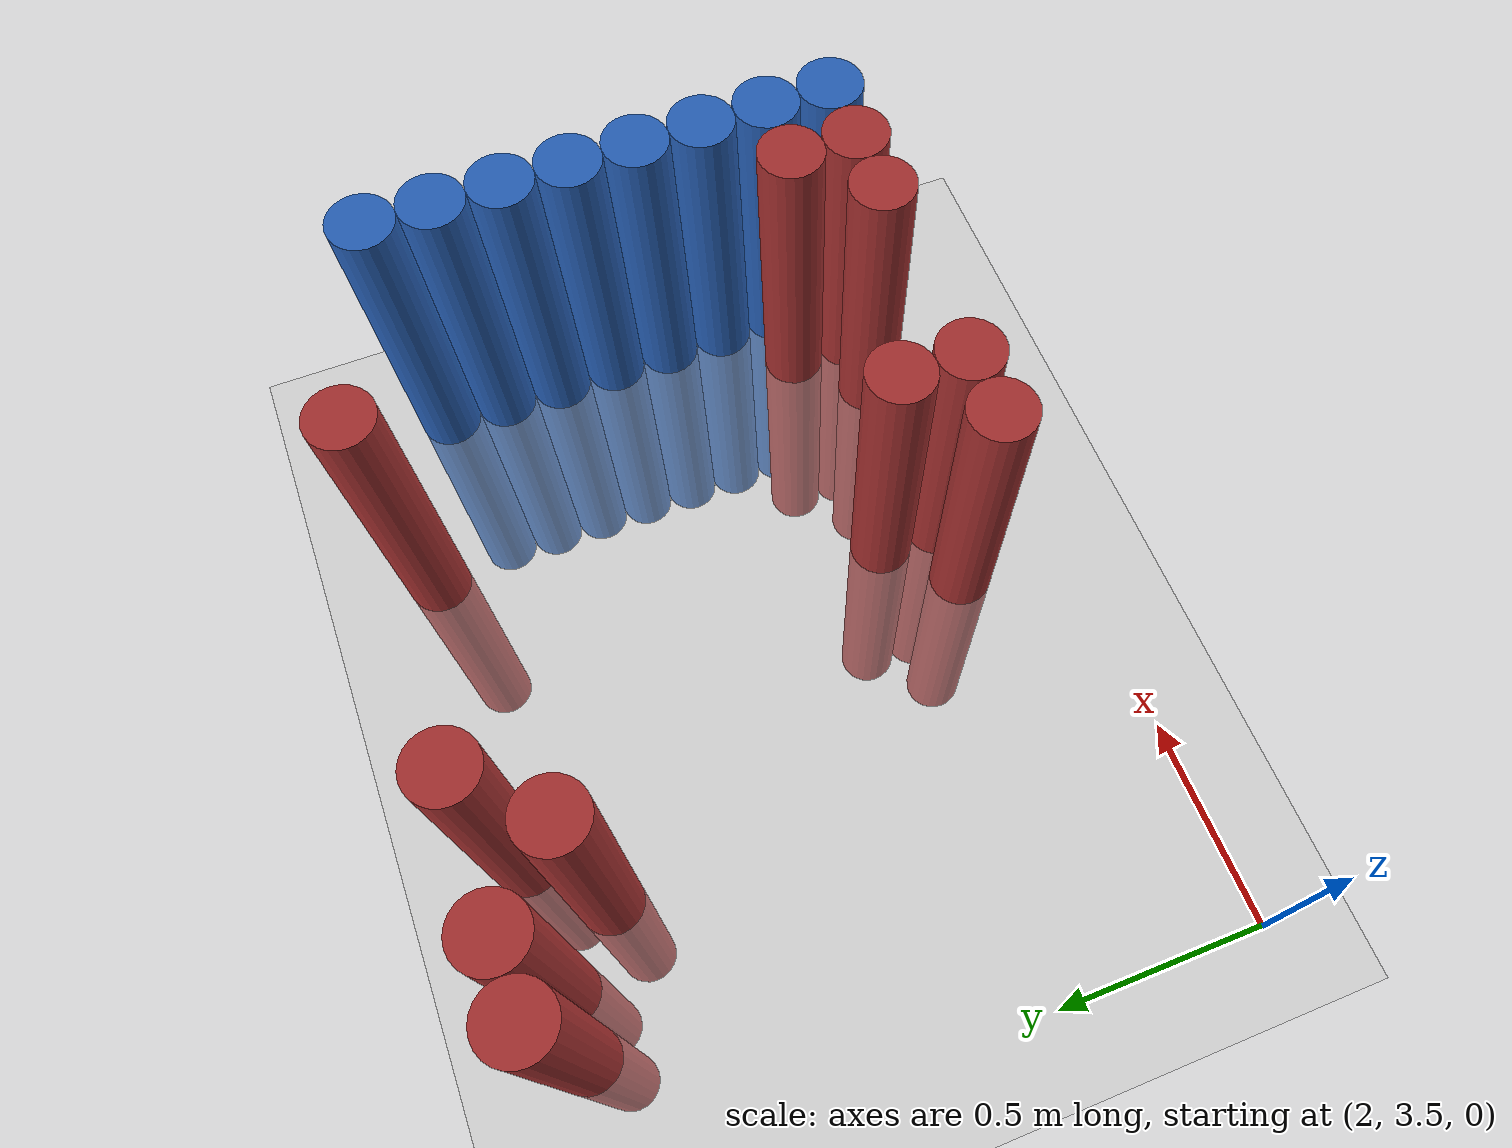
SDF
<sdf version="1.6">
 <world name="default">
  <model name="ground_plane">
   <static>1</static>
   <link name="link">
    <collision name="collision">
     <geometry><plane><normal>0 0 1</normal><size>100 100</size></plane></geometry>
     <surface><friction><ode><mu>100</mu><mu2>50</mu2></ode></friction></surface>
    </collision>
    <visual name="visual">
     <cast_shadows>0</cast_shadows>
     <geometry><plane><normal>0 0 1</normal><size>100 100</size></plane></geometry>
     <material>
      <script><uri>file://media/materials/scripts/gazebo.material</uri><name>Gazebo/Grey</name></script>
     </material>
    </visual>
   </link>
  </model>
  <model name="unit_cylinder_164">
   <static>1</static>
   <pose>3.925000 3.775000 0.000000 0.000000 0.000000 0.000000</pose>
   <link name="link">
    <inertial>
     <mass>1</mass>
     <inertia><ixx>0.145833</ixx><ixy>0</ixy><ixz>0</ixz><iyy>0.145833</iyy><iyz>0</iyz><izz>0.125</izz></inertia>
    </inertial>
    <collision name="collision">
     <geometry><cylinder><radius>0.075000</radius><length>1.5</length></cylinder></geometry>
    </collision>
    <visual name="visual">
     <geometry><cylinder><radius>0.075000</radius><length>1.5</length></cylinder></geometry>
     <material>
      <ambient>0.152000 0.379000 0.720000 1</ambient>
      <diffuse>0.152000 0.379000 0.720000 1</diffuse>
     </material>
     <material>
      <script><name>Gazebo/Grey</name><uri>file://media/materials/scripts/gazebo.material</uri></script>
     </material>
    </visual>
   </link>
  </model>
  <model name="unit_cylinder_166">
   <static>1</static>
   <pose>3.925000 3.925000 0.000000 0.000000 0.000000 0.000000</pose>
   <link name="link">
    <inertial>
     <mass>1</mass>
     <inertia><ixx>0.145833</ixx><ixy>0</ixy><ixz>0</ixz><iyy>0.145833</iyy><iyz>0</iyz><izz>0.125</izz></inertia>
    </inertial>
    <collision name="collision">
     <geometry><cylinder><radius>0.075000</radius><length>1.5</length></cylinder></geometry>
    </collision>
    <visual name="visual">
     <geometry><cylinder><radius>0.075000</radius><length>1.5</length></cylinder></geometry>
     <material>
      <ambient>0.152000 0.379000 0.720000 1</ambient>
      <diffuse>0.152000 0.379000 0.720000 1</diffuse>
     </material>
     <material>
      <script><name>Gazebo/Grey</name><uri>file://media/materials/scripts/gazebo.material</uri></script>
     </material>
    </visual>
   </link>
  </model>
  <model name="unit_cylinder_168">
   <static>1</static>
   <pose>3.925000 4.075000 0.000000 0.000000 0.000000 0.000000</pose>
   <link name="link">
    <inertial>
     <mass>1</mass>
     <inertia><ixx>0.145833</ixx><ixy>0</ixy><ixz>0</ixz><iyy>0.145833</iyy><iyz>0</iyz><izz>0.125</izz></inertia>
    </inertial>
    <collision name="collision">
     <geometry><cylinder><radius>0.075000</radius><length>1.5</length></cylinder></geometry>
    </collision>
    <visual name="visual">
     <geometry><cylinder><radius>0.075000</radius><length>1.5</length></cylinder></geometry>
     <material>
      <ambient>0.152000 0.379000 0.720000 1</ambient>
      <diffuse>0.152000 0.379000 0.720000 1</diffuse>
     </material>
     <material>
      <script><name>Gazebo/Grey</name><uri>file://media/materials/scripts/gazebo.material</uri></script>
     </material>
    </visual>
   </link>
  </model>
  <model name="unit_cylinder_170">
   <static>1</static>
   <pose>3.925000 4.225000 0.000000 0.000000 0.000000 0.000000</pose>
   <link name="link">
    <inertial>
     <mass>1</mass>
     <inertia><ixx>0.145833</ixx><ixy>0</ixy><ixz>0</ixz><iyy>0.145833</iyy><iyz>0</iyz><izz>0.125</izz></inertia>
    </inertial>
    <collision name="collision">
     <geometry><cylinder><radius>0.075000</radius><length>1.5</length></cylinder></geometry>
    </collision>
    <visual name="visual">
     <geometry><cylinder><radius>0.075000</radius><length>1.5</length></cylinder></geometry>
     <material>
      <ambient>0.152000 0.379000 0.720000 1</ambient>
      <diffuse>0.152000 0.379000 0.720000 1</diffuse>
     </material>
     <material>
      <script><name>Gazebo/Grey</name><uri>file://media/materials/scripts/gazebo.material</uri></script>
     </material>
    </visual>
   </link>
  </model>
  <model name="unit_cylinder_172">
   <static>1</static>
   <pose>3.925000 4.375000 0.000000 0.000000 0.000000 0.000000</pose>
   <link name="link">
    <inertial>
     <mass>1</mass>
     <inertia><ixx>0.145833</ixx><ixy>0</ixy><ixz>0</ixz><iyy>0.145833</iyy><iyz>0</iyz><izz>0.125</izz></inertia>
    </inertial>
    <collision name="collision">
     <geometry><cylinder><radius>0.075000</radius><length>1.5</length></cylinder></geometry>
    </collision>
    <visual name="visual">
     <geometry><cylinder><radius>0.075000</radius><length>1.5</length></cylinder></geometry>
     <material>
      <ambient>0.152000 0.379000 0.720000 1</ambient>
      <diffuse>0.152000 0.379000 0.720000 1</diffuse>
     </material>
     <material>
      <script><name>Gazebo/Grey</name><uri>file://media/materials/scripts/gazebo.material</uri></script>
     </material>
    </visual>
   </link>
  </model>
  <model name="unit_cylinder_174">
   <static>1</static>
   <pose>3.925000 4.525000 0.000000 0.000000 0.000000 0.000000</pose>
   <link name="link">
    <inertial>
     <mass>1</mass>
     <inertia><ixx>0.145833</ixx><ixy>0</ixy><ixz>0</ixz><iyy>0.145833</iyy><iyz>0</iyz><izz>0.125</izz></inertia>
    </inertial>
    <collision name="collision">
     <geometry><cylinder><radius>0.075000</radius><length>1.5</length></cylinder></geometry>
    </collision>
    <visual name="visual">
     <geometry><cylinder><radius>0.075000</radius><length>1.5</length></cylinder></geometry>
     <material>
      <ambient>0.152000 0.379000 0.720000 1</ambient>
      <diffuse>0.152000 0.379000 0.720000 1</diffuse>
     </material>
     <material>
      <script><name>Gazebo/Grey</name><uri>file://media/materials/scripts/gazebo.material</uri></script>
     </material>
    </visual>
   </link>
  </model>
  <model name="unit_cylinder_176">
   <static>1</static>
   <pose>3.925000 4.675000 0.000000 0.000000 0.000000 0.000000</pose>
   <link name="link">
    <inertial>
     <mass>1</mass>
     <inertia><ixx>0.145833</ixx><ixy>0</ixy><ixz>0</ixz><iyy>0.145833</iyy><iyz>0</iyz><izz>0.125</izz></inertia>
    </inertial>
    <collision name="collision">
     <geometry><cylinder><radius>0.075000</radius><length>1.5</length></cylinder></geometry>
    </collision>
    <visual name="visual">
     <geometry><cylinder><radius>0.075000</radius><length>1.5</length></cylinder></geometry>
     <material>
      <ambient>0.152000 0.379000 0.720000 1</ambient>
      <diffuse>0.152000 0.379000 0.720000 1</diffuse>
     </material>
     <material>
      <script><name>Gazebo/Grey</name><uri>file://media/materials/scripts/gazebo.material</uri></script>
     </material>
    </visual>
   </link>
  </model>
  <model name="unit_cylinder_178">
   <static>1</static>
   <pose>3.925000 4.825000 0.000000 0.000000 0.000000 0.000000</pose>
   <link name="link">
    <inertial>
     <mass>1</mass>
     <inertia><ixx>0.145833</ixx><ixy>0</ixy><ixz>0</ixz><iyy>0.145833</iyy><iyz>0</iyz><izz>0.125</izz></inertia>
    </inertial>
    <collision name="collision">
     <geometry><cylinder><radius>0.075000</radius><length>1.5</length></cylinder></geometry>
    </collision>
    <visual name="visual">
     <geometry><cylinder><radius>0.075000</radius><length>1.5</length></cylinder></geometry>
     <material>
      <ambient>0.152000 0.379000 0.720000 1</ambient>
      <diffuse>0.152000 0.379000 0.720000 1</diffuse>
     </material>
     <material>
      <script><name>Gazebo/Grey</name><uri>file://media/materials/scripts/gazebo.material</uri></script>
     </material>
    </visual>
   </link>
  </model>
  <model name="unit_cylinder_387">
   <static>1</static>
   <pose>2.275000 4.975000 0.000000 0.000000 0.000000 0.000000</pose>
   <link name="link">
    <inertial>
     <mass>1</mass>
     <inertia><ixx>0.145833</ixx><ixy>0</ixy><ixz>0</ixz><iyy>0.145833</iyy><iyz>0</iyz><izz>0.125</izz></inertia>
    </inertial>
    <collision name="collision">
     <geometry><cylinder><radius>0.075000</radius><length>1.5</length></cylinder></geometry>
    </collision>
    <visual name="visual">
     <geometry><cylinder><radius>0.075000</radius><length>1.5</length></cylinder></geometry>
     <material>
      <ambient>0.648000 0.192000 0.192000 1</ambient>
      <diffuse>0.648000 0.192000 0.192000 1</diffuse>
     </material>
     <material>
      <script><name>Gazebo/Grey</name><uri>file://media/materials/scripts/gazebo.material</uri></script>
     </material>
    </visual>
   </link>
  </model>
  <model name="unit_cylinder_391">
   <static>1</static>
   <pose>2.425000 4.975000 0.000000 0.000000 0.000000 0.000000</pose>
   <link name="link">
    <inertial>
     <mass>1</mass>
     <inertia><ixx>0.145833</ixx><ixy>0</ixy><ixz>0</ixz><iyy>0.145833</iyy><iyz>0</iyz><izz>0.125</izz></inertia>
    </inertial>
    <collision name="collision">
     <geometry><cylinder><radius>0.075000</radius><length>1.5</length></cylinder></geometry>
    </collision>
    <visual name="visual">
     <geometry><cylinder><radius>0.075000</radius><length>1.5</length></cylinder></geometry>
     <material>
      <ambient>0.648000 0.192000 0.192000 1</ambient>
      <diffuse>0.648000 0.192000 0.192000 1</diffuse>
     </material>
     <material>
      <script><name>Gazebo/Grey</name><uri>file://media/materials/scripts/gazebo.material</uri></script>
     </material>
    </visual>
   </link>
  </model>
  <model name="unit_cylinder_394">
   <static>1</static>
   <pose>2.575000 4.825000 0.000000 0.000000 0.000000 0.000000</pose>
   <link name="link">
    <inertial>
     <mass>1</mass>
     <inertia><ixx>0.145833</ixx><ixy>0</ixy><ixz>0</ixz><iyy>0.145833</iyy><iyz>0</iyz><izz>0.125</izz></inertia>
    </inertial>
    <collision name="collision">
     <geometry><cylinder><radius>0.075000</radius><length>1.5</length></cylinder></geometry>
    </collision>
    <visual name="visual">
     <geometry><cylinder><radius>0.075000</radius><length>1.5</length></cylinder></geometry>
     <material>
      <ambient>0.648000 0.192000 0.192000 1</ambient>
      <diffuse>0.648000 0.192000 0.192000 1</diffuse>
     </material>
     <material>
      <script><name>Gazebo/Grey</name><uri>file://media/materials/scripts/gazebo.material</uri></script>
     </material>
    </visual>
   </link>
  </model>
  <model name="unit_cylinder_397">
   <static>1</static>
   <pose>2.725000 4.975000 0.000000 0.000000 0.000000 0.000000</pose>
   <link name="link">
    <inertial>
     <mass>1</mass>
     <inertia><ixx>0.145833</ixx><ixy>0</ixy><ixz>0</ixz><iyy>0.145833</iyy><iyz>0</iyz><izz>0.125</izz></inertia>
    </inertial>
    <collision name="collision">
     <geometry><cylinder><radius>0.075000</radius><length>1.5</length></cylinder></geometry>
    </collision>
    <visual name="visual">
     <geometry><cylinder><radius>0.075000</radius><length>1.5</length></cylinder></geometry>
     <material>
      <ambient>0.648000 0.192000 0.192000 1</ambient>
      <diffuse>0.648000 0.192000 0.192000 1</diffuse>
     </material>
     <material>
      <script><name>Gazebo/Grey</name><uri>file://media/materials/scripts/gazebo.material</uri></script>
     </material>
    </visual>
   </link>
  </model>
  <model name="unit_cylinder_403">
   <static>1</static>
   <pose>3.025000 3.775000 0.000000 0.000000 0.000000 0.000000</pose>
   <link name="link">
    <inertial>
     <mass>1</mass>
     <inertia><ixx>0.145833</ixx><ixy>0</ixy><ixz>0</ixz><iyy>0.145833</iyy><iyz>0</iyz><izz>0.125</izz></inertia>
    </inertial>
    <collision name="collision">
     <geometry><cylinder><radius>0.075000</radius><length>1.5</length></cylinder></geometry>
    </collision>
    <visual name="visual">
     <geometry><cylinder><radius>0.075000</radius><length>1.5</length></cylinder></geometry>
     <material>
      <ambient>0.648000 0.192000 0.192000 1</ambient>
      <diffuse>0.648000 0.192000 0.192000 1</diffuse>
     </material>
     <material>
      <script><name>Gazebo/Grey</name><uri>file://media/materials/scripts/gazebo.material</uri></script>
     </material>
    </visual>
   </link>
  </model>
  <model name="unit_cylinder_405">
   <static>1</static>
   <pose>3.175000 3.775000 0.000000 0.000000 0.000000 0.000000</pose>
   <link name="link">
    <inertial>
     <mass>1</mass>
     <inertia><ixx>0.145833</ixx><ixy>0</ixy><ixz>0</ixz><iyy>0.145833</iyy><iyz>0</iyz><izz>0.125</izz></inertia>
    </inertial>
    <collision name="collision">
     <geometry><cylinder><radius>0.075000</radius><length>1.5</length></cylinder></geometry>
    </collision>
    <visual name="visual">
     <geometry><cylinder><radius>0.075000</radius><length>1.5</length></cylinder></geometry>
     <material>
      <ambient>0.648000 0.192000 0.192000 1</ambient>
      <diffuse>0.648000 0.192000 0.192000 1</diffuse>
     </material>
     <material>
      <script><name>Gazebo/Grey</name><uri>file://media/materials/scripts/gazebo.material</uri></script>
     </material>
    </visual>
   </link>
  </model>
  <model name="unit_cylinder_406">
   <static>1</static>
   <pose>3.175000 3.925000 0.000000 0.000000 0.000000 0.000000</pose>
   <link name="link">
    <inertial>
     <mass>1</mass>
     <inertia><ixx>0.145833</ixx><ixy>0</ixy><ixz>0</ixz><iyy>0.145833</iyy><iyz>0</iyz><izz>0.125</izz></inertia>
    </inertial>
    <collision name="collision">
     <geometry><cylinder><radius>0.075000</radius><length>1.5</length></cylinder></geometry>
    </collision>
    <visual name="visual">
     <geometry><cylinder><radius>0.075000</radius><length>1.5</length></cylinder></geometry>
     <material>
      <ambient>0.648000 0.192000 0.192000 1</ambient>
      <diffuse>0.648000 0.192000 0.192000 1</diffuse>
     </material>
     <material>
      <script><name>Gazebo/Grey</name><uri>file://media/materials/scripts/gazebo.material</uri></script>
     </material>
    </visual>
   </link>
  </model>
  <model name="unit_cylinder_413">
   <static>1</static>
   <pose>3.475000 4.975000 0.000000 0.000000 0.000000 0.000000</pose>
   <link name="link">
    <inertial>
     <mass>1</mass>
     <inertia><ixx>0.145833</ixx><ixy>0</ixy><ixz>0</ixz><iyy>0.145833</iyy><iyz>0</iyz><izz>0.125</izz></inertia>
    </inertial>
    <collision name="collision">
     <geometry><cylinder><radius>0.075000</radius><length>1.5</length></cylinder></geometry>
    </collision>
    <visual name="visual">
     <geometry><cylinder><radius>0.075000</radius><length>1.5</length></cylinder></geometry>
     <material>
      <ambient>0.648000 0.192000 0.192000 1</ambient>
      <diffuse>0.648000 0.192000 0.192000 1</diffuse>
     </material>
     <material>
      <script><name>Gazebo/Grey</name><uri>file://media/materials/scripts/gazebo.material</uri></script>
     </material>
    </visual>
   </link>
  </model>
  <model name="unit_cylinder_419">
   <static>1</static>
   <pose>3.625000 3.775000 0.000000 0.000000 0.000000 0.000000</pose>
   <link name="link">
    <inertial>
     <mass>1</mass>
     <inertia><ixx>0.145833</ixx><ixy>0</ixy><ixz>0</ixz><iyy>0.145833</iyy><iyz>0</iyz><izz>0.125</izz></inertia>
    </inertial>
    <collision name="collision">
     <geometry><cylinder><radius>0.075000</radius><length>1.5</length></cylinder></geometry>
    </collision>
    <visual name="visual">
     <geometry><cylinder><radius>0.075000</radius><length>1.5</length></cylinder></geometry>
     <material>
      <ambient>0.648000 0.192000 0.192000 1</ambient>
      <diffuse>0.648000 0.192000 0.192000 1</diffuse>
     </material>
     <material>
      <script><name>Gazebo/Grey</name><uri>file://media/materials/scripts/gazebo.material</uri></script>
     </material>
    </visual>
   </link>
  </model>
  <model name="unit_cylinder_435">
   <static>1</static>
   <pose>3.775000 3.775000 0.000000 0.000000 0.000000 0.000000</pose>
   <link name="link">
    <inertial>
     <mass>1</mass>
     <inertia><ixx>0.145833</ixx><ixy>0</ixy><ixz>0</ixz><iyy>0.145833</iyy><iyz>0</iyz><izz>0.125</izz></inertia>
    </inertial>
    <collision name="collision">
     <geometry><cylinder><radius>0.075000</radius><length>1.5</length></cylinder></geometry>
    </collision>
    <visual name="visual">
     <geometry><cylinder><radius>0.075000</radius><length>1.5</length></cylinder></geometry>
     <material>
      <ambient>0.648000 0.192000 0.192000 1</ambient>
      <diffuse>0.648000 0.192000 0.192000 1</diffuse>
     </material>
     <material>
      <script><name>Gazebo/Grey</name><uri>file://media/materials/scripts/gazebo.material</uri></script>
     </material>
    </visual>
   </link>
  </model>
  <model name="unit_cylinder_436">
   <static>1</static>
   <pose>3.775000 3.925000 0.000000 0.000000 0.000000 0.000000</pose>
   <link name="link">
    <inertial>
     <mass>1</mass>
     <inertia><ixx>0.145833</ixx><ixy>0</ixy><ixz>0</ixz><iyy>0.145833</iyy><iyz>0</iyz><izz>0.125</izz></inertia>
    </inertial>
    <collision name="collision">
     <geometry><cylinder><radius>0.075000</radius><length>1.5</length></cylinder></geometry>
    </collision>
    <visual name="visual">
     <geometry><cylinder><radius>0.075000</radius><length>1.5</length></cylinder></geometry>
     <material>
      <ambient>0.648000 0.192000 0.192000 1</ambient>
      <diffuse>0.648000 0.192000 0.192000 1</diffuse>
     </material>
     <material>
      <script><name>Gazebo/Grey</name><uri>file://media/materials/scripts/gazebo.material</uri></script>
     </material>
    </visual>
   </link>
  </model>
  <model name="unit_cylinder_477">
   <static>1</static>
   <pose>3.925000 3.775000 0.000000 0.000000 0.000000 0.000000</pose>
   <link name="link">
    <inertial>
     <mass>1</mass>
     <inertia><ixx>0.145833</ixx><ixy>0</ixy><ixz>0</ixz><iyy>0.145833</iyy><iyz>0</iyz><izz>0.125</izz></inertia>
    </inertial>
    <collision name="collision">
     <geometry><cylinder><radius>0.075000</radius><length>1.5</length></cylinder></geometry>
    </collision>
    <visual name="visual">
     <geometry><cylinder><radius>0.075000</radius><length>1.5</length></cylinder></geometry>
     <material>
      <ambient>0.152000 0.379000 0.720000 1</ambient>
      <diffuse>0.152000 0.379000 0.720000 1</diffuse>
     </material>
     <material>
      <script><name>Gazebo/Grey</name><uri>file://media/materials/scripts/gazebo.material</uri></script>
     </material>
    </visual>
   </link>
  </model>
  <model name="unit_cylinder_478">
   <static>1</static>
   <pose>3.925000 3.925000 0.000000 0.000000 0.000000 0.000000</pose>
   <link name="link">
    <inertial>
     <mass>1</mass>
     <inertia><ixx>0.145833</ixx><ixy>0</ixy><ixz>0</ixz><iyy>0.145833</iyy><iyz>0</iyz><izz>0.125</izz></inertia>
    </inertial>
    <collision name="collision">
     <geometry><cylinder><radius>0.075000</radius><length>1.5</length></cylinder></geometry>
    </collision>
    <visual name="visual">
     <geometry><cylinder><radius>0.075000</radius><length>1.5</length></cylinder></geometry>
     <material>
      <ambient>0.152000 0.379000 0.720000 1</ambient>
      <diffuse>0.152000 0.379000 0.720000 1</diffuse>
     </material>
     <material>
      <script><name>Gazebo/Grey</name><uri>file://media/materials/scripts/gazebo.material</uri></script>
     </material>
    </visual>
   </link>
  </model>
  <model name="unit_cylinder_479">
   <static>1</static>
   <pose>3.925000 4.075000 0.000000 0.000000 0.000000 0.000000</pose>
   <link name="link">
    <inertial>
     <mass>1</mass>
     <inertia><ixx>0.145833</ixx><ixy>0</ixy><ixz>0</ixz><iyy>0.145833</iyy><iyz>0</iyz><izz>0.125</izz></inertia>
    </inertial>
    <collision name="collision">
     <geometry><cylinder><radius>0.075000</radius><length>1.5</length></cylinder></geometry>
    </collision>
    <visual name="visual">
     <geometry><cylinder><radius>0.075000</radius><length>1.5</length></cylinder></geometry>
     <material>
      <ambient>0.152000 0.379000 0.720000 1</ambient>
      <diffuse>0.152000 0.379000 0.720000 1</diffuse>
     </material>
     <material>
      <script><name>Gazebo/Grey</name><uri>file://media/materials/scripts/gazebo.material</uri></script>
     </material>
    </visual>
   </link>
  </model>
  <model name="unit_cylinder_480">
   <static>1</static>
   <pose>3.925000 4.225000 0.000000 0.000000 0.000000 0.000000</pose>
   <link name="link">
    <inertial>
     <mass>1</mass>
     <inertia><ixx>0.145833</ixx><ixy>0</ixy><ixz>0</ixz><iyy>0.145833</iyy><iyz>0</iyz><izz>0.125</izz></inertia>
    </inertial>
    <collision name="collision">
     <geometry><cylinder><radius>0.075000</radius><length>1.5</length></cylinder></geometry>
    </collision>
    <visual name="visual">
     <geometry><cylinder><radius>0.075000</radius><length>1.5</length></cylinder></geometry>
     <material>
      <ambient>0.152000 0.379000 0.720000 1</ambient>
      <diffuse>0.152000 0.379000 0.720000 1</diffuse>
     </material>
     <material>
      <script><name>Gazebo/Grey</name><uri>file://media/materials/scripts/gazebo.material</uri></script>
     </material>
    </visual>
   </link>
  </model>
  <model name="unit_cylinder_481">
   <static>1</static>
   <pose>3.925000 4.375000 0.000000 0.000000 0.000000 0.000000</pose>
   <link name="link">
    <inertial>
     <mass>1</mass>
     <inertia><ixx>0.145833</ixx><ixy>0</ixy><ixz>0</ixz><iyy>0.145833</iyy><iyz>0</iyz><izz>0.125</izz></inertia>
    </inertial>
    <collision name="collision">
     <geometry><cylinder><radius>0.075000</radius><length>1.5</length></cylinder></geometry>
    </collision>
    <visual name="visual">
     <geometry><cylinder><radius>0.075000</radius><length>1.5</length></cylinder></geometry>
     <material>
      <ambient>0.152000 0.379000 0.720000 1</ambient>
      <diffuse>0.152000 0.379000 0.720000 1</diffuse>
     </material>
     <material>
      <script><name>Gazebo/Grey</name><uri>file://media/materials/scripts/gazebo.material</uri></script>
     </material>
    </visual>
   </link>
  </model>
  <model name="unit_cylinder_482">
   <static>1</static>
   <pose>3.925000 4.525000 0.000000 0.000000 0.000000 0.000000</pose>
   <link name="link">
    <inertial>
     <mass>1</mass>
     <inertia><ixx>0.145833</ixx><ixy>0</ixy><ixz>0</ixz><iyy>0.145833</iyy><iyz>0</iyz><izz>0.125</izz></inertia>
    </inertial>
    <collision name="collision">
     <geometry><cylinder><radius>0.075000</radius><length>1.5</length></cylinder></geometry>
    </collision>
    <visual name="visual">
     <geometry><cylinder><radius>0.075000</radius><length>1.5</length></cylinder></geometry>
     <material>
      <ambient>0.152000 0.379000 0.720000 1</ambient>
      <diffuse>0.152000 0.379000 0.720000 1</diffuse>
     </material>
     <material>
      <script><name>Gazebo/Grey</name><uri>file://media/materials/scripts/gazebo.material</uri></script>
     </material>
    </visual>
   </link>
  </model>
  <model name="unit_cylinder_483">
   <static>1</static>
   <pose>3.925000 4.675000 0.000000 0.000000 0.000000 0.000000</pose>
   <link name="link">
    <inertial>
     <mass>1</mass>
     <inertia><ixx>0.145833</ixx><ixy>0</ixy><ixz>0</ixz><iyy>0.145833</iyy><iyz>0</iyz><izz>0.125</izz></inertia>
    </inertial>
    <collision name="collision">
     <geometry><cylinder><radius>0.075000</radius><length>1.5</length></cylinder></geometry>
    </collision>
    <visual name="visual">
     <geometry><cylinder><radius>0.075000</radius><length>1.5</length></cylinder></geometry>
     <material>
      <ambient>0.152000 0.379000 0.720000 1</ambient>
      <diffuse>0.152000 0.379000 0.720000 1</diffuse>
     </material>
     <material>
      <script><name>Gazebo/Grey</name><uri>file://media/materials/scripts/gazebo.material</uri></script>
     </material>
    </visual>
   </link>
  </model>
  <model name="unit_cylinder_484">
   <static>1</static>
   <pose>3.925000 4.825000 0.000000 0.000000 0.000000 0.000000</pose>
   <link name="link">
    <inertial>
     <mass>1</mass>
     <inertia><ixx>0.145833</ixx><ixy>0</ixy><ixz>0</ixz><iyy>0.145833</iyy><iyz>0</iyz><izz>0.125</izz></inertia>
    </inertial>
    <collision name="collision">
     <geometry><cylinder><radius>0.075000</radius><length>1.5</length></cylinder></geometry>
    </collision>
    <visual name="visual">
     <geometry><cylinder><radius>0.075000</radius><length>1.5</length></cylinder></geometry>
     <material>
      <ambient>0.152000 0.379000 0.720000 1</ambient>
      <diffuse>0.152000 0.379000 0.720000 1</diffuse>
     </material>
     <material>
      <script><name>Gazebo/Grey</name><uri>file://media/materials/scripts/gazebo.material</uri></script>
     </material>
    </visual>
   </link>
  </model>
 </world>
</sdf>
